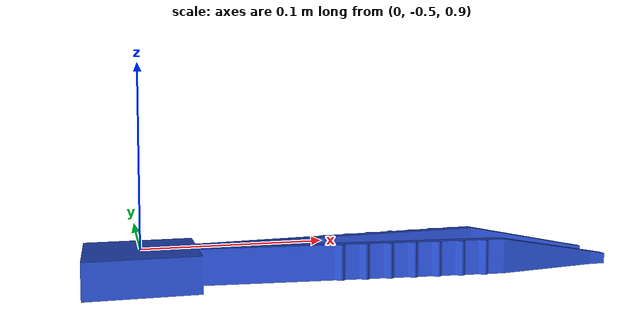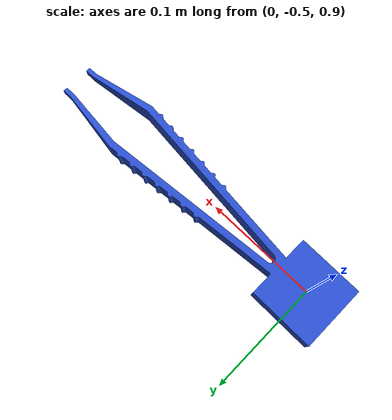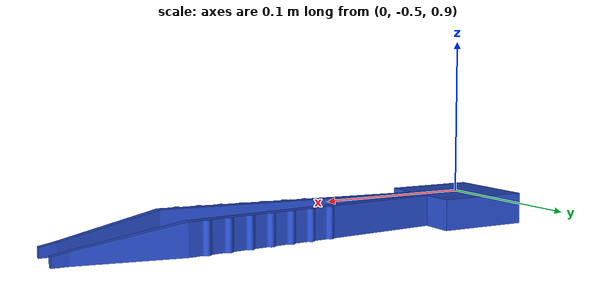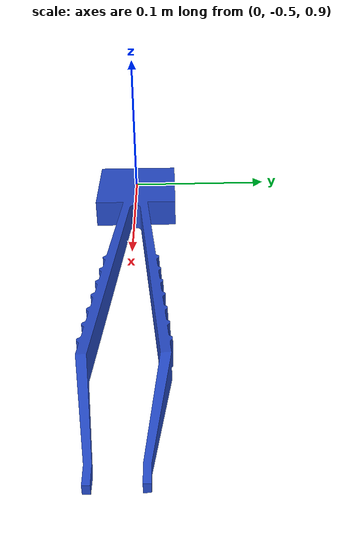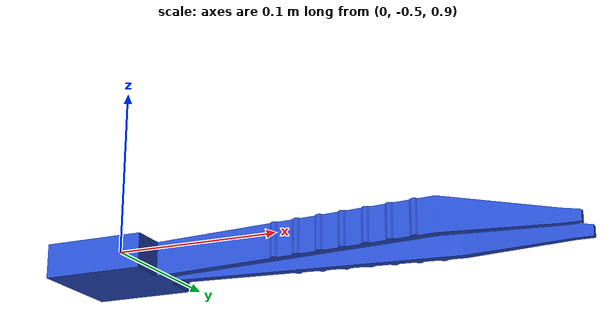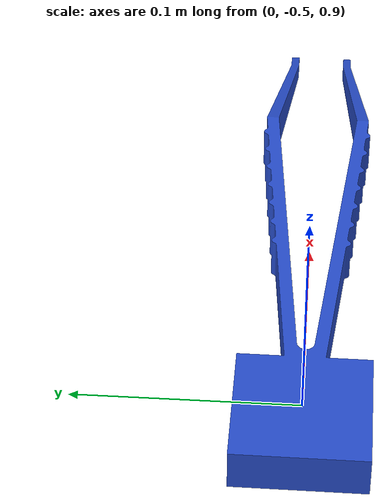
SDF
<?xml version='1.0'?>
<sdf version='1.6'>
  <model name='lanchet'>
    <link name="handle">
    	<pose>0 -0.5 0.90 0 0 -1.5757</pose>
      <inertial>
        <mass>0</mass>
        <inertia>
          <ixx>0.00001</ixx>
          <iyy>0.00001</iyy>
          <izz>0.00001</izz>
        </inertia>
      </inertial>
      <visual name='visual_handle'>
        <geometry>
          <mesh>
          	<uri>model://pinza/meshes/pinza_v2.dae</uri>
          	<scale>0.002 0.002 0.002</scale>
          </mesh>
        </geometry>
        <material>
          <script>
            <uri>file://media/materials/scripts/gazebo.material</uri>
            <name>Gazebo/Blue</name>
          </script>
        </material>
      </visual>
      <collision name='collision_handle'>
        <geometry>
          <box>
            <size>0.06 0.3 0.02</size>
          </box>
        </geometry>
        <surface>
          <friction>
            <ode>
              <mu>5000</mu>
              <mu2>5000</mu2>
              <fdir1>0 0 0</fdir1>
              <slip1>0</slip1>
              <slip2>0</slip2>
            </ode>
            <torsional>
              <coefficient>100000000</coefficient>
            </torsional>
          </friction>
          <contact>
            <ode>
              <kp>1e+13</kp>
              <kd>1000000</kd>
              <max_vel>0</max_vel>
              <min_depth>0.002</min_depth>
            </ode>
            <bullet>
              <kp>1e+13</kp>
              <kd>1000000</kd>
            </bullet>
          </contact>
        </surface>
      </collision>
    </link>

</model>
</sdf>
